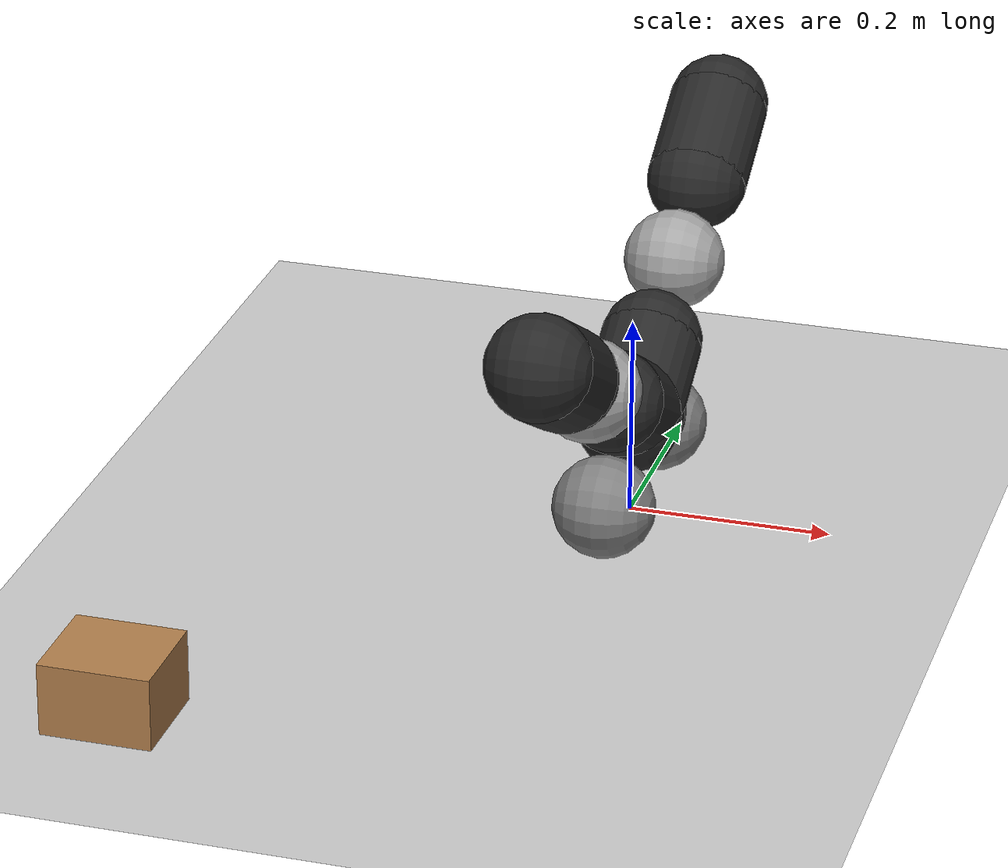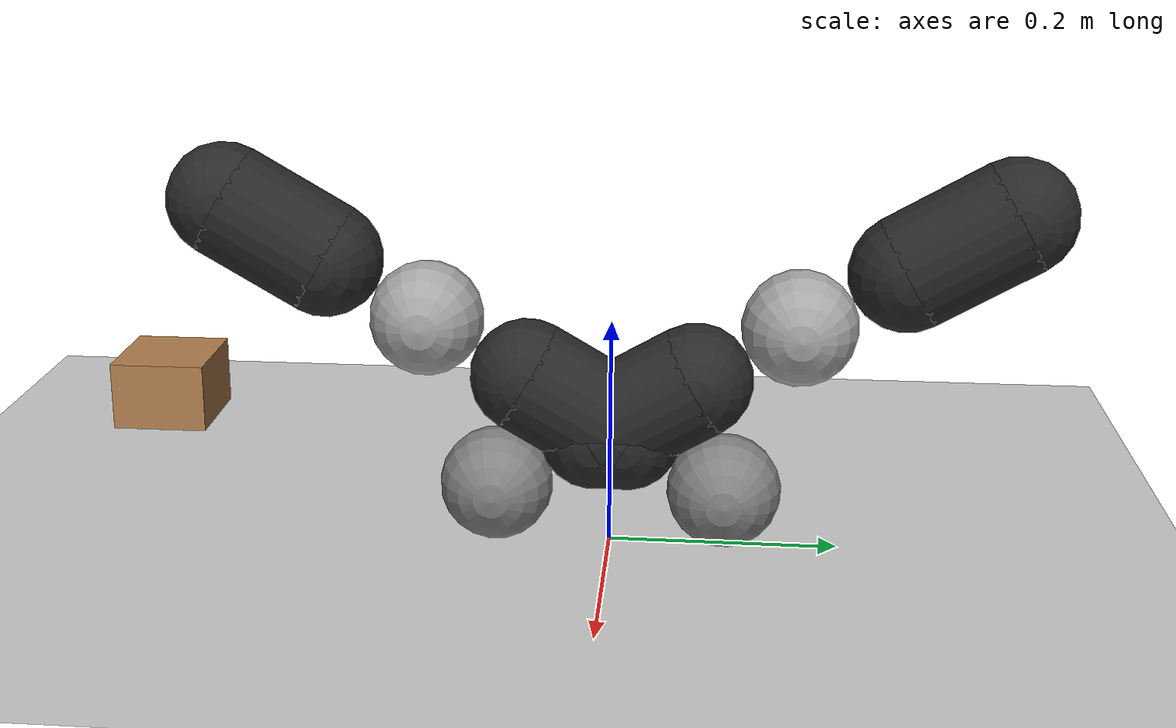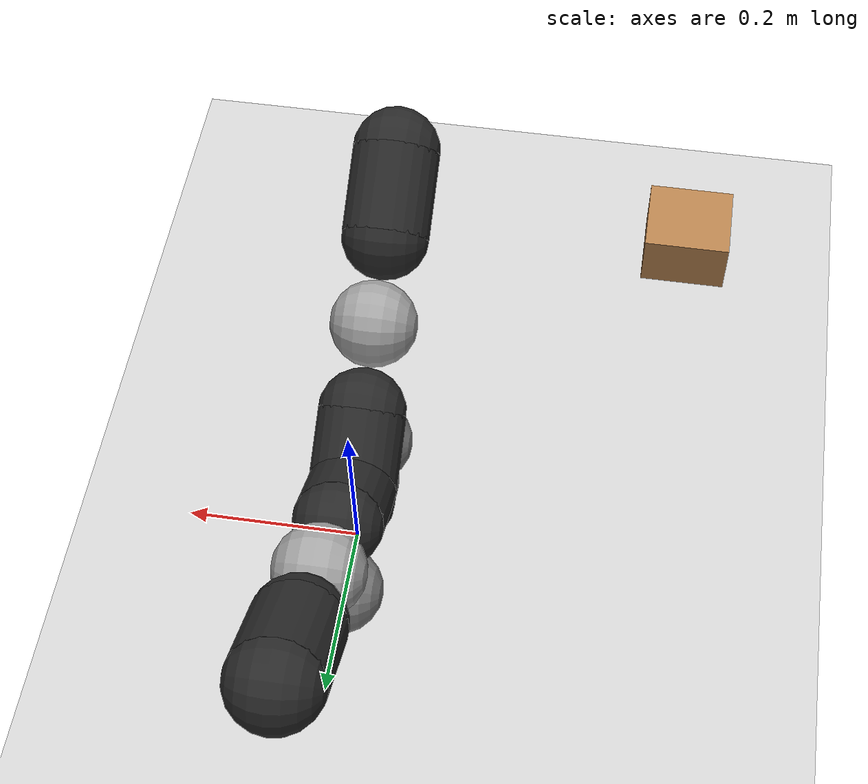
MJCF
<mujoco model="planar arm scene">

    <include file="left_finger.xml" />
    <include file="right_finger.xml" />
    <include file="rod.xml" />
    <statistic center="0 0 0.05" extent="0.8" />

    <visual>
        <headlight diffuse="0.6 0.6 0.6" ambient="0.3 0.3 0.3" specular="0 0 0" />
        <rgba haze="0.15 0.25 0.35 1" />
        <global azimuth="120" elevation="-20" />
    </visual>

    <asset>
        <texture name="grid" type="2d" builtin="flat"
            rgb1="1 1 1" width="512" height="512" />
        <material name="grid" texture="grid" texrepeat="1 1" texuniform="true" reflectance="0" />
        <material name="uniform" texuniform="true" reflectance="0" specular="0" shininess="0" />
        <texture type="2d" name="groundplane"
            file="light-gray-floor-tile.png" />
        <material name="groundplane" texture="groundplane" reflectance="0.0" />
    </asset>

    <worldbody>
        <camera name="birdview" pos="-0.494 0.001 1.981"
            xyaxes="0.001 1.000 -0.000 -1.000 0.001 0.026" />
        <camera mode="fixed" name="frontview" pos="2.0 0. 0.2" quat="0.5 0.5 0.5 0.5" />
        <geom name="floor" type="plane" condim="3" size="0 0 0.050000000000000003"
            material="groundplane" pos="0 0 -0.02" />
        <light pos="0 0 1.5" dir="0 0 -1" directional="true" castshadow="false" />

    </worldbody>

</mujoco>

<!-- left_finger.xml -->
<mujoco model="robot_left">
  <compiler eulerseq="XYZ" autolimits="true" />

  <default>
    <default class="left_arm" />
  </default>
  <asset>
    <material name="la_material_1" class="left_arm" emission="0" specular="0"
      rgba="0.16 0.16 0.16 1" />
    <material name="la_material_2" class="left_arm" emission="0" specular="0"
      rgba="0.16 0.16 0.16 1" />
    <material name="la_material_3" class="left_arm" emission="0" specular="0"
      rgba="0.64 0.64 0.64 1" />
    <material name="la_material_4" class="left_arm" emission="0" specular="0"
      rgba="0.16 0.16 0.16 1" />
    <material name="la_material_5" class="left_arm" emission="0" specular="0"
      rgba="0.16 0.16 0.16 1" />
    <material name="la_material_6" class="left_arm" emission="0" specular="0"
      rgba="0.16 0.16 0.16 1" />
    <material name="la_material_7" class="left_arm" emission="0" specular="0"
      rgba="0.16 0.16 0.16 1" />
  </asset>
  <worldbody>
    <body name="la_0" pos="0 -0.1 0.05" euler="-90 -60 -90">
      <inertial pos="0 0 0" mass="1" fullinertia="0.003 0.003 0.003 0 0 0" />
      <geom name="la_collision" class="left_arm" type="sphere" group="3" size="0.05"
        pos="0 0 0" euler="0 -0 0" />
      <geom name="la_ball" class="left_arm" type="sphere" group="0" size="0.05" pos="0 0 0"
        euler="0 -0 0" />
      <body name="la_1" pos="0 0 0" euler="0 -0 0">
        <inertial pos="0 0 0" mass="0.1" fullinertia="0.003 0.003 0.003 0 0 0" />
        <geom name="la_collision_0" class="left_arm" type="sphere" group="3" size="0.05"
          pos="0 -0.10 0" euler="0 -0 0" />
        <geom name="la_collision_1" class="left_arm" type="sphere" group="3" size="0.05"
          pos="0 -0.20 0" euler="0 -0 0" />
        <geom name="la_collision_2" class="left_arm" type="sphere" group="3" size="0.05"
          pos="0 -0.30 0" euler="0 -0 0" />
        <geom name="la_ball0" class="left_arm" type="sphere" group="0" size="0.05"
          material="la_material_1" pos="0 -0.10 0" euler="0 -0 0" />
        <geom name="la_ball1" class="left_arm" type="sphere" group="0" size="0.05"
          material="la_material_2" pos="0 -0.20 0" euler="0 -0 0" />
        <geom name="la_ball2" class="left_arm" type="sphere" group="0" size="0.05"
          material="la_material_3" pos="0 -0.30 0" euler="0 -0 0" />
        <geom name="cylinder" class="left_arm" type="cylinder" group="0" size="0.05 0.05"
          material="la_material_4" pos="0 -0.150 0" euler="90 -0 0" />
        <joint name="robot:la_joint_1" class="left_arm" type="hinge" pos="0 0 0" axis="-1 0 0"
          limited="true" range="0 90" damping="0.50" />
        <body name="la_2" pos="0 -0.30 0" euler="0 -0 0">
          <inertial pos="0 0 0" mass="0.01" fullinertia="0.003 0.003 0.003 0 0 0" />
          <geom name="la_collision_0_0" class="left_arm" type="sphere" group="3"
            size="0.05" pos="0 -0.10 0" euler="0 -0 0" />
          <geom name="la_collision_1_0" class="left_arm" type="sphere" group="3"
            size="0.05" pos="0 -0.20 0" euler="0 -0 0" />
          <geom name="la_ball0_0" class="left_arm" type="sphere" group="0"
            size="0.05" material="la_material_5" pos="0 -0.10 0"
            euler="0 -0 0" />
          <geom name="la_ball1_0" class="left_arm" type="sphere" group="0"
            size="0.05" material="la_material_6" pos="0 -0.20 0"
            euler="0 -0 0" />
          <geom name="cylinder_0" class="left_arm" type="cylinder" group="0"
            size="0.05 0.05" material="la_material_7"
            pos="0 -0.15 0" euler="90 -0 0" />
          <joint name="robot:la_joint_2" class="left_arm" type="hinge" pos="0 0 0" axis="-1 0 0"
            limited="true" range="0 137.50987083139756" damping="0.50" />
          <site name="lf_site_tip" pos="0 0 0.0" />
        </body>
      </body>
    </body>
  </worldbody>

  <actuator>
    <position class="left_arm" name="robot:la_actuator_1" joint="robot:la_joint_1"
      ctrlrange="0 2.1" />
    <position class="left_arm" name="robot:la_actuator_2" joint="robot:la_joint_2"
      ctrlrange="0 2.1" />
  </actuator>

</mujoco>

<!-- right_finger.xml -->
<mujoco model="robot_right">
  <compiler eulerseq="XYZ" autolimits="true" />

  <default>
    <default class="right_arm" />
  </default>
  <asset>
    <material name="ra_material_1" class="right_arm" emission="0" specular="0"
      rgba="0.16 0.16 0.16 1" />
    <material name="ra_material_2" class="right_arm" emission="0" specular="0"
      rgba="0.16 0.16 0.16 1" />
    <material name="ra_material_3" class="right_arm" emission="0" specular="0"
      rgba="0.64 0.64 0.64 1" />
    <material name="ra_material_4" class="right_arm" emission="0" specular="0"
      rgba="0.16 0.16 0.16 1" />
    <material name="ra_material_5" class="right_arm" emission="0" specular="0"
      rgba="0.16 0.16 0.16 1" />
    <material name="ra_material_6" class="right_arm" emission="0" specular="0"
      rgba="0.16 0.16 0.16 1" />
    <material name="ra_material_7" class="right_arm" emission="0" specular="0"
      rgba="0.16 0.16 0.16 1" />
  </asset>
  <worldbody>
    <body name="ra_0" pos="0 0.1 0.05" euler="90 -60 90">
      <inertial pos="0 0 0" mass="1" fullinertia="0.003 0.003 0.003 0 0 0" />
      <geom name="ra_collision" class="right_arm" type="sphere" group="3"
        size="0.05" pos="0 0 0" euler="0 -0 0" />
      <geom name="ra_ball" class="right_arm" type="sphere" group="0" size="0.05" pos="0 0 0"
        euler="0 -0 0" />
      <body name="ra_1" pos="0 0 0" euler="0 -0 0">
        <inertial pos="0 0 0" mass="0.1" fullinertia="0.003 0.003 0.003 0 0 0" />
        <geom name="ra_collision_0" class="right_arm" type="sphere" group="3"
          size="0.05" pos="0 0.10 0" euler="0 -0 0" />
        <geom name="ra_collision_1" class="right_arm" type="sphere" group="3"
          size="0.05" pos="0 0.20 0" euler="0 -0 0" />
        <geom name="ra_collision_2" class="right_arm" type="sphere" group="3"
          size="0.05" pos="0 0.30 0" euler="0 -0 0" />
        <geom name="ra_ball0" class="right_arm" type="sphere" group="0" size="0.05"
          material="ra_material_1" pos="0 0.10 0" euler="0 -0 0" />
        <geom name="ra_ball1" class="right_arm" type="sphere" group="0" size="0.05"
          material="ra_material_2" pos="0 0.20 0" euler="0 -0 0" />
        <geom name="ra_ball2" class="right_arm" type="sphere" group="0" size="0.05"
          material="ra_material_3" pos="0 0.30 0" euler="0 -0 0" />
        <geom name="ra_cylinder" class="right_arm" type="cylinder" group="0"
          size="0.05 0.05" material="ra_material_4"
          pos="0 0.150 0" euler="90 -0 0" />
        <joint name="robot:ra_joint_1" class="right_arm" type="hinge" pos="0 0 0" axis="1 0 0"
          limited="true" range="0 90" damping="0.50" />
        <body name="ra_2" pos="0 0.30 0" euler="0 -0 0">
          <inertial pos="0 0 0" mass="0.01" fullinertia="0.003 0.003 0.003 0 0 0" />
          <geom name="ra_collision_0_0" class="right_arm" type="sphere" group="3"
            size="0.05" pos="0 0.10 0" euler="0 -0 0" />
          <geom name="ra_collision_1_0" class="right_arm" type="sphere" group="3"
            size="0.05" pos="0 0.20 0" euler="0 -0 0" />
          <geom name="ra_ball0_0" class="right_arm" type="sphere" group="0"
            size="0.05" material="ra_material_5" pos="0 0.10 0"
            euler="0 -0 0" />
          <geom name="ra_ball1_0" class="right_arm" type="sphere" group="0"
            size="0.05" material="ra_material_6" pos="0 0.20 0"
            euler="0 -0 0" />
          <geom name="ra_cylinder_0" class="right_arm" type="cylinder" group="0"
            size="0.05 0.05" material="ra_material_7"
            pos="0 0.15 0" euler="90 -0 0" />
          <joint name="robot:ra_joint_2" class="right_arm" type="hinge" pos="0 0 0" axis="1 0 0"
            limited="true" range="0 137.50987083139756" damping="0.50" />
          <site name="rf_site_tip" pos="0 0 0.0" />
        </body>
      </body>
    </body>
  </worldbody>

  <actuator>
    <position class="right_arm" name="robot:ra_actuator_1" joint="robot:ra_joint_1" kp="10"
      ctrlrange="0 2.1" />
    <position class="right_arm" name="robot:ra_actuator_2" joint="robot:ra_joint_2" kp="5"
      ctrlrange="0 2.1" />
  </actuator>
</mujoco>

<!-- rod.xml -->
<mujoco model="rod">
    <asset>
        <mesh file="../objects/meshes/rod.obj" name="rod_mesh" scale="0.0005 0.005 0.005" />
        <texture type="2d" name="rod_texture"
            file="../textures/dark-wood.png" />
        <material name="rod_material" texture="rod_texture" texrepeat="1 1"
            texuniform="true" />

    </asset>
    <worldbody>
        <body name="box">
            <geom pos="-0.35 -0.5 0" mesh="rod_mesh" type="mesh" material="rod_material"
                density="150" group="0" condim="4" />
        </body>
    </worldbody>
</mujoco>
